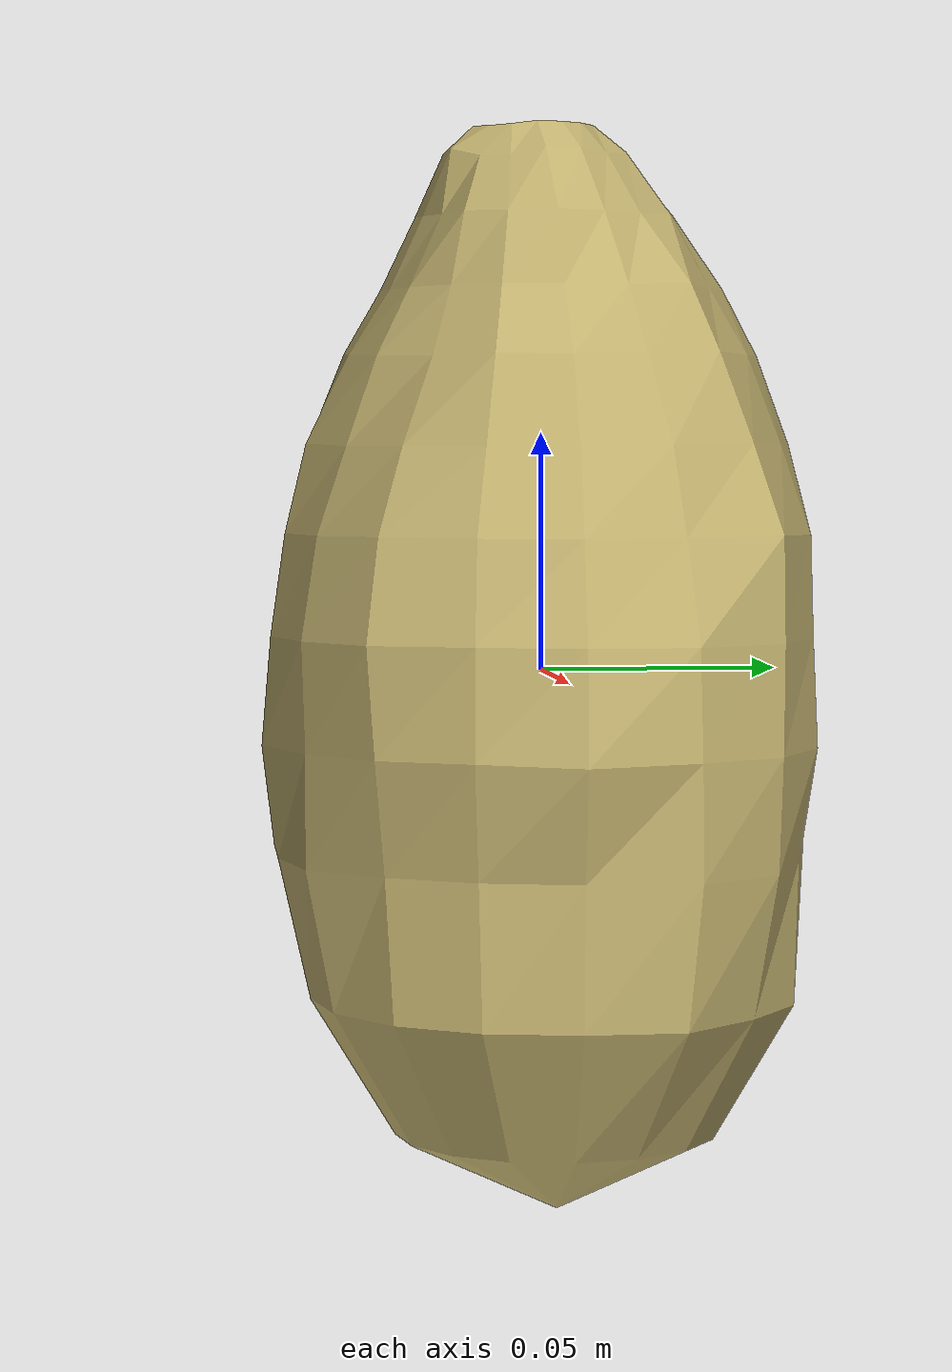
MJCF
<mujoco model="Lettuce_27">
  <compiler autolimits="true" boundmass="0.01" angle="radian"/>
  <default>
    <default class="/">
      <default class="__VISUAL_MJT__">
        <geom contype="0" conaffinity="0" group="0"/>
      </default>
      <default class="__STRUCTURAL_MJT__">
        <geom contype="8" conaffinity="15" group="4" friction="0.90000000000000002 0.90000000000000002 0.001" solref="0.025000000000000001 1" solimp="0.998 0.998 0.001"/>
      </default>
      <default class="__DYNAMIC_MJT__">
        <geom contype="1" conaffinity="15" group="4" friction="0.90000000000000002 0.90000000000000002 0.001" solref="0.025000000000000001 1" solimp="0.998 0.998 0.001"/>
      </default>
    </default>
  </default>
  <asset>
    <texture name="Lettuce3_Mat" type="2d" file="Lettuce3_AlbedoTransparency.png"/>
    <material name="material_Lettuce3_Mat" class="/" texture="Lettuce3_Mat" specular="0.5" shininess="0.5" rgba="1 0.95246359999999997 0.62735850000000004 1"/>
    <mesh name="Lettuce_27_lettuce_c7" class="/" file="Lettuce_27_lettuce_c7/Lettuce_27_lettuce_c7.obj" scale="1 1 1"/>
  </asset>
  <worldbody>
    <body name="Lettuce_27">
      <joint name="Lettuce_27_free" class="/" type="free" pos="0 0 0" axis="0 0 1" stiffness="0" range="0 0" armature="0" damping="0.10000000000000001" frictionloss="0"/>
      <body name="Lettuce_27_lettuce_c7" pos="-0.00108 -0.00031 0.01265" quat="1 0 0 0">
        <geom name="Lettuce_27_lettuce_c7" class="__VISUAL_MJT__" type="mesh" material="material_Lettuce3_Mat" shellinertia="true" mesh="Lettuce_27_lettuce_c7"/>
        <geom name="Lettuce_27_PrimitiveCollider_0" class="__DYNAMIC_MJT__" type="capsule" size="0.05877317488193512 0.043890893459320068" rgba="0 1 0 1" pos="-0.0011148881167173386 0.0003140866756439209 -0.024039939045906067" quat="1.4329928060467751e-06 0.99999489496964733 0.0031953141614874132 -3.292722444529772e-10"/>
        <geom name="Lettuce_27_PrimitiveCollider_1" class="__DYNAMIC_MJT__" type="capsule" size="0.03503311425447464 0.0082700625061988831" rgba="0 1 0 1" pos="0.0048336479812860489 0.0039653927087783813 0.058202177286148071" quat="6.7960018832613466e-17 0.99717810488064296 -0.075072146277095214 6.9388939039072284e-18"/>
      </body>
    </body>
  </worldbody>
</mujoco>
